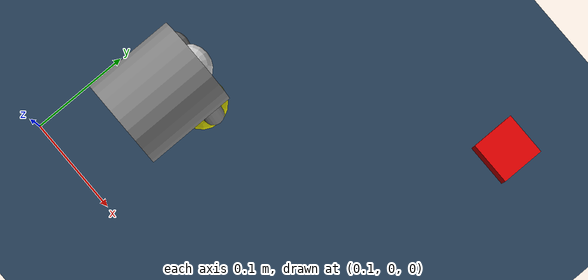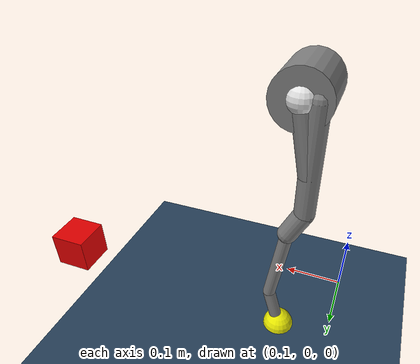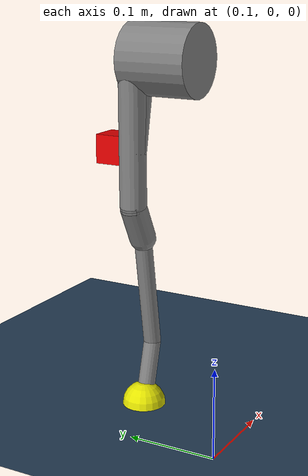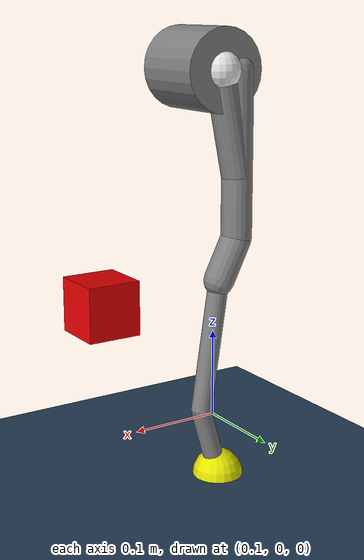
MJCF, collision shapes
<mujoco model="a1 leg scene">
  <include file="a1_leg.xml"/>

  <statistic center="0 0 0.1" extent="0.8"/>

  <visual>
    <headlight diffuse="0.6 0.6 0.6" ambient="0.3 0.3 0.3" specular="0 0 0"/>
    <rgba haze="0.15 0.25 0.35 1"/>
    <global azimuth="120" elevation="-20"/>
  </visual>

  <asset>
    <texture type="skybox" builtin="gradient" rgb1="0.3 0.5 0.7" rgb2="0 0 0" width="512" height="3072"/>
    <texture type="2d" name="groundplane" builtin="checker" mark="edge" rgb1="0.2 0.3 0.4" rgb2="0.1 0.2 0.3"
      markrgb="0.8 0.8 0.8" width="300" height="300"/>
    <material name="groundplane" texture="groundplane" texuniform="true" texrepeat="5 5" reflectance="0.2"/>
  </asset>

  <worldbody>
    <light pos="0 0 1.5" dir="0 0 -1" directional="true"/>
    <geom name="floor" size="0 0 0.05" type="plane" material="groundplane"/>
  </worldbody>
</mujoco>

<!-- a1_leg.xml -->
<mujoco model="a1">
  <compiler angle="radian" meshdir="assets" texturedir="assets" autolimits="true"/>

  <option cone="elliptic" impratio="100" gravity="0 0 0"/>

  <default>
    <default class="a1">
      <geom friction="0.6" margin="0.001"/>
      <joint axis="0 1 0" damping="2" armature="0.01" frictionloss="0.2"/>
      <position kp="100" forcerange="-33.5 33.5"/>
      <default class="abduction">
        <joint axis="1 0 0" damping="1" range="-0.802851 0.802851"/>
        <position ctrlrange="-0.802851 0.802851"/>
      </default>
      <default class="hip">
        <joint range="-1.0472 4.18879"/>
        <position ctrlrange="-1.0472 4.18879"/>
      </default>
      <default class="knee">
        <joint range="-2.69653 -0.916298"/>
        <position ctrlrange="-2.69653 -0.916298"/>
      </default>
      <default class="visual">
        <geom type="mesh" contype="0" conaffinity="0" group="2" material="dark"/>
      </default>
      <default class="collision">
        <geom group="3" type="capsule"/>
        <default class="hip_left">
          <geom size="0.04 0.04" quat="1 1 0 0" type="cylinder" pos="0 0.055 0"/>
        </default>
        <default class="hip_right">
          <geom size="0.04 0.04" quat="1 1 0 0" type="cylinder" pos="0 -0.055 0"/>
        </default>
        <default class="thigh1">
          <geom size="0.015" fromto="-0.02 0 0 -0.02 0 -0.16"/>
        </default>
        <default class="thigh2">
          <geom size="0.015" fromto="0 0 0 -0.02 0 -0.1"/>
        </default>
        <default class="thigh3">
          <geom size="0.015" fromto="-0.02 0 -0.16 0 0 -0.2"/>
        </default>
        <default class="calf1">
          <geom size="0.01" fromto="0 0 0 0.02 0 -0.13"/>
        </default>
        <default class="calf2">
          <geom size="0.01" fromto="0.02 0 -0.13 0 0 -0.2"/>
        </default>
        <default class="foot">
          <geom type="sphere" size="0.02" pos="0 0 -0.2" priority="1" solimp="0.015 1 0.02" condim="6"
            friction="0.8 0.02 0.01"/>
        </default>
      </default>
    </default>
  </default>

  <asset>
    <material name="dark" specular="0" shininess="0.25" rgba="0.2 0.2 0.2 1"/>
    <texture type="2d" name="trunk_A1" file="trunk_A1.png"/>
    <material name="carbonfibre" texture="trunk_A1" specular="0" shininess="0.25"/>

    <mesh class="a1" file="calf.obj"/>
    <mesh class="a1" file="hip.obj"/>
    <mesh class="a1" file="thigh.obj"/>
    <mesh class="a1" file="thigh_mirror.obj"/>
    <mesh class="a1" file="trunk.obj"/>
  </asset>

  <worldbody>
    <light name="spotlight" mode="targetbodycom" target="FL_hip" pos="0 -1 2"/>
      <body name="FL_hip" pos="0.183 0.047 0.4" >
        <inertial mass="0.696" pos="-0.003311 0.000635 3.1e-05" quat="0.494499 0.491507 0.506268 0.507528"
          diaginertia="0.000807752 0.00055293 0.000468983"/>
        <joint class="abduction" name="FL_hip_joint"/>
        <geom class="visual" mesh="hip"/>
        <geom class="hip_left"/>
        <geom class="collision" size="0.04 0.04" pos="0 0.055 0" quat="1 1 0 0" type="cylinder"/>
        <site name='FL_in_shoulder' pos='0 0 0' quat='1 0 0 0' size='0.01' rgba="0 0 0 0"/>  <!-- added-->
        <body name="FL_thigh" pos="0 0.08505 0">
          <inertial mass="1.013" pos="-0.003237 -0.022327 -0.027326" quat="0.999125 0.00256393 -0.0409531 0.00806091"
            diaginertia="0.00555739 0.00513936 0.00133944"/>
          <joint class="hip" name="FL_thigh_joint"/>
          <geom class="visual" mesh="thigh"/>
          <geom class="thigh1"/>
          <geom class="thigh2"/>
          <geom class="thigh3"/>
          <site name='FL_out_shoulder' pos='0 0 0' quat='1 0 0 0' size='0.02' rgba=".9 .9 .9 1"/>   <!-- added-->
          <body name="FL_calf" pos="0 0 -0.2">
            <inertial mass="0.226" pos="0.00472659 0 -0.131975" quat="0.706886 0.017653 0.017653 0.706886"
              diaginertia="0.00340344 0.00339393 3.54834e-05"/>
            <joint class="knee" name="FL_calf_joint"/>
            <geom class="visual" mesh="calf"/>
            <geom class="calf1"/>
            <geom class="calf2"/>
            <geom class="foot"/>
            <site name='FL_elbow' pos='0 0 0' quat='1 0 0 0' size='0.01' rgba="0 0 0 0"/> <!-- added-->
            <site name='FL_foot' pos='0 0 -0.2' quat='1 0 0 0' size='0.025' rgba=".9 .9 0 1"/> <!-- added-->
          </body>
        </body>
      </body>
      <body name="reference" pos="0.4 0.3 0.25" mocap="true">
  			<geom type="box" size=".02 .02 .02" rgba=".9 0 0 1"/>
  		</body>
  </worldbody>

  <actuator>
    <position class="abduction" name="FL_hip" joint="FL_hip_joint"/>
    <position class="hip" name="FL_thigh" joint="FL_thigh_joint"/>
    <position class="knee" name="FL_calf" joint="FL_calf_joint"/>
  </actuator>

  <keyframe>
    <key name="home" qpos="0.2 0.9 -1.8"
      ctrl="0.2 0.9 -1.8"/>
  </keyframe>
</mujoco>
